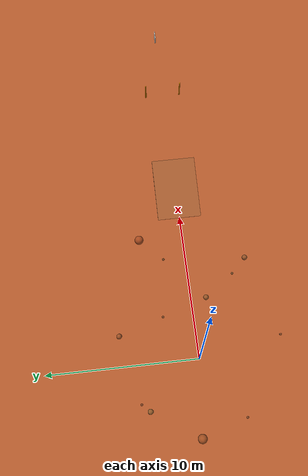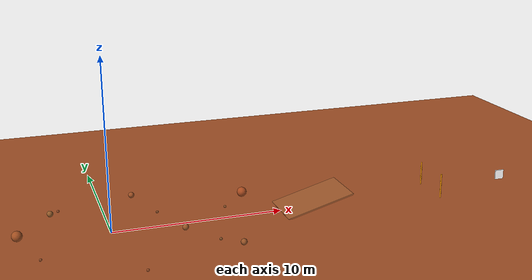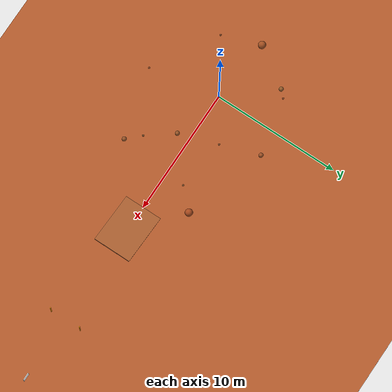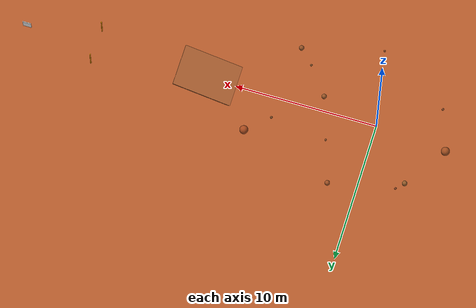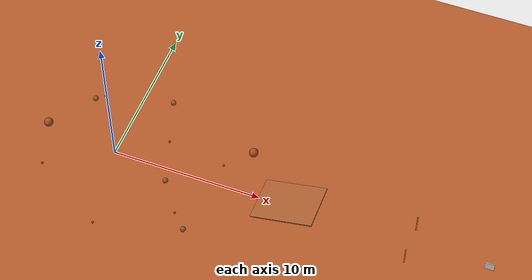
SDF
<?xml version="1.0"?>
<sdf version="1.8">
  <world name="depot">
    <gravity>0 0 -9.8066</gravity>
    <physics name="default_physics" type="ode">
      <max_step_size>0.004</max_step_size>
      <real_time_factor>1</real_time_factor>
    </physics>

    <!-- Required system plugins (same as empty.world) -->
    <plugin filename="gz-sim-physics-system"
            name="gz::sim::systems::Physics"/>
    <plugin filename="gz-sim-user-commands-system"
            name="gz::sim::systems::UserCommands"/>
    <plugin filename="gz-sim-scene-broadcaster-system"
            name="gz::sim::systems::SceneBroadcaster"/>
    <plugin filename="gz-sim-imu-system"
            name="gz::sim::systems::Imu"/>
    <plugin filename="gz-sim-navsat-system"
            name="gz::sim::systems::NavSat"/>
    <plugin filename="gz-sim-sensors-system"
            name="gz::sim::systems::Sensors">
      <render_engine>ogre2</render_engine>
    </plugin>
    <plugin filename="gz-sim-contact-system"
            name="gz::sim::systems::Contact"/>

    <!-- Reddish Mars-like sky and ambient -->
    <scene>
      <ambient>0.35 0.22 0.15 1</ambient>
      <background>0.55 0.38 0.22 1</background>
      <shadows>true</shadows>
    </scene>

    <!-- Sun — warm reddish tint to simulate Mars atmosphere -->
    <light type="directional" name="sun">
      <cast_shadows>true</cast_shadows>
      <pose>0 0 20 0 0 0</pose>
      <diffuse>0.85 0.70 0.55 1</diffuse>
      <specular>0.20 0.15 0.10 1</specular>
      <direction>-0.5 0.1 -0.9</direction>
    </light>

    <!-- ─── GPS origin: ARC Turkey placeholder ─────────────────────────── -->
    <!-- Update latitude_deg / longitude_deg to competition site before shipping -->
    <spherical_coordinates>
      <surface_model>EARTH_WGS84</surface_model>
      <latitude_deg>37.8700</latitude_deg>
      <longitude_deg>32.4800</longitude_deg>
      <elevation>1020.0</elevation>
      <heading_deg>0</heading_deg>
    </spherical_coordinates>

    <!-- ─── Ground plane — reddish Mars soil, loose friction ──────────── -->
    <model name="mars_ground">
      <static>true</static>
      <link name="link">
        <collision name="collision">
          <geometry>
            <box><size>100 100 0.1</size></box>
          </geometry>
          <surface>
            <friction>
              <ode>
                <mu>0.4</mu>
                <mu2>0.4</mu2>
              </ode>
            </friction>
          </surface>
        </collision>
        <visual name="visual">
          <geometry>
            <box><size>100 100 0.1</size></box>
          </geometry>
          <material>
            <ambient>0.58 0.28 0.12 1</ambient>
            <diffuse>0.68 0.34 0.16 1</diffuse>
            <specular>0.02 0.02 0.02 1</specular>
          </material>
        </visual>
      </link>
      <pose>0 0 -0.05 0 0 0</pose>
    </model>

    <!-- ─── Rocks — 6 small (r=0.08) ────────────────────────────────── -->
    <model name="rock_s1">
      <static>true</static>
      <pose>3.0 2.0 0.08 0 0 0</pose>
      <link name="link">
        <collision name="col"><geometry><sphere><radius>0.08</radius></sphere></geometry>
          <surface><friction><ode><mu>0.4</mu><mu2>0.4</mu2></ode></friction></surface>
        </collision>
        <visual name="vis"><geometry><sphere><radius>0.08</radius></sphere></geometry>
          <material><ambient>0.42 0.22 0.10 1</ambient><diffuse>0.52 0.28 0.13 1</diffuse></material>
        </visual>
      </link>
    </model>

    <model name="rock_s2">
      <static>true</static>
      <pose>-2.5 4.0 0.08 0 0 0.8</pose>
      <link name="link">
        <collision name="col"><geometry><sphere><radius>0.08</radius></sphere></geometry>
          <surface><friction><ode><mu>0.4</mu><mu2>0.4</mu2></ode></friction></surface>
        </collision>
        <visual name="vis"><geometry><sphere><radius>0.08</radius></sphere></geometry>
          <material><ambient>0.44 0.20 0.09 1</ambient><diffuse>0.54 0.26 0.12 1</diffuse></material>
        </visual>
      </link>
    </model>

    <model name="rock_s3">
      <static>true</static>
      <pose>5.5 -3.0 0.08 0 0 1.2</pose>
      <link name="link">
        <collision name="col"><geometry><sphere><radius>0.08</radius></sphere></geometry>
          <surface><friction><ode><mu>0.4</mu><mu2>0.4</mu2></ode></friction></surface>
        </collision>
        <visual name="vis"><geometry><sphere><radius>0.08</radius></sphere></geometry>
          <material><ambient>0.40 0.24 0.11 1</ambient><diffuse>0.50 0.30 0.14 1</diffuse></material>
        </visual>
      </link>
    </model>

    <model name="rock_s4">
      <static>true</static>
      <pose>-4.0 -2.5 0.08 0 0 0.3</pose>
      <link name="link">
        <collision name="col"><geometry><sphere><radius>0.08</radius></sphere></geometry>
          <surface><friction><ode><mu>0.4</mu><mu2>0.4</mu2></ode></friction></surface>
        </collision>
        <visual name="vis"><geometry><sphere><radius>0.08</radius></sphere></geometry>
          <material><ambient>0.43 0.21 0.10 1</ambient><diffuse>0.53 0.27 0.13 1</diffuse></material>
        </visual>
      </link>
    </model>

    <model name="rock_s5">
      <static>true</static>
      <pose>7.0 1.5 0.08 0 0 2.1</pose>
      <link name="link">
        <collision name="col"><geometry><sphere><radius>0.08</radius></sphere></geometry>
          <surface><friction><ode><mu>0.4</mu><mu2>0.4</mu2></ode></friction></surface>
        </collision>
        <visual name="vis"><geometry><sphere><radius>0.08</radius></sphere></geometry>
          <material><ambient>0.41 0.23 0.10 1</ambient><diffuse>0.51 0.29 0.13 1</diffuse></material>
        </visual>
      </link>
    </model>

    <model name="rock_s6">
      <static>true</static>
      <pose>1.0 -5.5 0.08 0 0 0.6</pose>
      <link name="link">
        <collision name="col"><geometry><sphere><radius>0.08</radius></sphere></geometry>
          <surface><friction><ode><mu>0.4</mu><mu2>0.4</mu2></ode></friction></surface>
        </collision>
        <visual name="vis"><geometry><sphere><radius>0.08</radius></sphere></geometry>
          <material><ambient>0.45 0.21 0.09 1</ambient><diffuse>0.55 0.27 0.12 1</diffuse></material>
        </visual>
      </link>
    </model>

    <!-- ─── Rocks — 4 medium (r=0.18) ───────────────────────────────── -->
    <model name="rock_m1">
      <static>true</static>
      <pose>4.0 -1.0 0.18 0 0 1.0</pose>
      <link name="link">
        <collision name="col"><geometry><sphere><radius>0.18</radius></sphere></geometry>
          <surface><friction><ode><mu>0.4</mu><mu2>0.4</mu2></ode></friction></surface>
        </collision>
        <visual name="vis"><geometry><sphere><radius>0.18</radius></sphere></geometry>
          <material><ambient>0.48 0.26 0.11 1</ambient><diffuse>0.58 0.32 0.14 1</diffuse></material>
        </visual>
      </link>
    </model>

    <model name="rock_m2">
      <static>true</static>
      <pose>-3.0 3.5 0.18 0 0 0.4</pose>
      <link name="link">
        <collision name="col"><geometry><sphere><radius>0.18</radius></sphere></geometry>
          <surface><friction><ode><mu>0.4</mu><mu2>0.4</mu2></ode></friction></surface>
        </collision>
        <visual name="vis"><geometry><sphere><radius>0.18</radius></sphere></geometry>
          <material><ambient>0.46 0.28 0.12 1</ambient><diffuse>0.56 0.34 0.15 1</diffuse></material>
        </visual>
      </link>
    </model>

    <model name="rock_m3">
      <static>true</static>
      <pose>2.0 5.0 0.18 0 0 1.7</pose>
      <link name="link">
        <collision name="col"><geometry><sphere><radius>0.18</radius></sphere></geometry>
          <surface><friction><ode><mu>0.4</mu><mu2>0.4</mu2></ode></friction></surface>
        </collision>
        <visual name="vis"><geometry><sphere><radius>0.18</radius></sphere></geometry>
          <material><ambient>0.50 0.24 0.10 1</ambient><diffuse>0.60 0.30 0.13 1</diffuse></material>
        </visual>
      </link>
    </model>

    <model name="rock_m4">
      <static>true</static>
      <pose>6.5 -4.0 0.18 0 0 0.9</pose>
      <link name="link">
        <collision name="col"><geometry><sphere><radius>0.18</radius></sphere></geometry>
          <surface><friction><ode><mu>0.4</mu><mu2>0.4</mu2></ode></friction></surface>
        </collision>
        <visual name="vis"><geometry><sphere><radius>0.18</radius></sphere></geometry>
          <material><ambient>0.47 0.25 0.11 1</ambient><diffuse>0.57 0.31 0.14 1</diffuse></material>
        </visual>
      </link>
    </model>

    <!-- ─── Rocks — 2 large (r=0.30) ────────────────────────────────── -->
    <model name="rock_l1">
      <static>true</static>
      <pose>-5.0 0.5 0.30 0 0 0.7</pose>
      <link name="link">
        <collision name="col"><geometry><sphere><radius>0.30</radius></sphere></geometry>
          <surface><friction><ode><mu>0.4</mu><mu2>0.4</mu2></ode></friction></surface>
        </collision>
        <visual name="vis"><geometry><sphere><radius>0.30</radius></sphere></geometry>
          <material><ambient>0.50 0.24 0.09 1</ambient><diffuse>0.62 0.30 0.12 1</diffuse></material>
        </visual>
      </link>
    </model>

    <model name="rock_l2">
      <static>true</static>
      <pose>8.5 3.0 0.30 0 0 1.4</pose>
      <link name="link">
        <collision name="col"><geometry><sphere><radius>0.30</radius></sphere></geometry>
          <surface><friction><ode><mu>0.4</mu><mu2>0.4</mu2></ode></friction></surface>
        </collision>
        <visual name="vis"><geometry><sphere><radius>0.30</radius></sphere></geometry>
          <material><ambient>0.52 0.22 0.08 1</ambient><diffuse>0.64 0.28 0.11 1</diffuse></material>
        </visual>
      </link>
    </model>

    <!-- ─── Slope berm — 15° incline, 4 m long, triggers slope_detector ── -->
    <!--
      A 4 m long, 3 m wide slab tilted at 15° (0.2618 rad) around Y-axis.
      Rover drives up from X=10; far edge rises ~1.04 m above ground.
      Center at X=12, Z=0.52 (mid-height of ramp).
    -->
    <model name="slope_berm">
      <static>true</static>
      <pose>12.0 0.0 0.52 0 -0.2618 0</pose>
      <link name="link">
        <collision name="collision">
          <geometry>
            <box><size>4.2 3.0 0.08</size></box>
          </geometry>
          <surface>
            <friction>
              <ode>
                <mu>0.5</mu>
                <mu2>0.5</mu2>
              </ode>
            </friction>
          </surface>
        </collision>
        <visual name="visual">
          <geometry>
            <box><size>4.2 3.0 0.08</size></box>
          </geometry>
          <material>
            <ambient>0.55 0.30 0.14 1</ambient>
            <diffuse>0.65 0.36 0.18 1</diffuse>
          </material>
        </visual>
      </link>
    </model>

    <!-- ─── Navigation gate — 2.5 m opening, 1.5 m tall poles ──────── -->
    <model name="gate_pole_left">
      <static>true</static>
      <pose>20.0 -1.25 0.75 0 0 0</pose>
      <link name="link">
        <collision name="collision">
          <geometry>
            <cylinder><radius>0.04</radius><length>1.5</length></cylinder>
          </geometry>
        </collision>
        <visual name="visual">
          <geometry>
            <cylinder><radius>0.04</radius><length>1.5</length></cylinder>
          </geometry>
          <material>
            <ambient>1.0 0.5 0.0 1</ambient>
            <diffuse>1.0 0.6 0.0 1</diffuse>
          </material>
        </visual>
      </link>
    </model>

    <model name="gate_pole_right">
      <static>true</static>
      <pose>20.0 1.25 0.75 0 0 0</pose>
      <link name="link">
        <collision name="collision">
          <geometry>
            <cylinder><radius>0.04</radius><length>1.5</length></cylinder>
          </geometry>
        </collision>
        <visual name="visual">
          <geometry>
            <cylinder><radius>0.04</radius><length>1.5</length></cylinder>
          </geometry>
          <material>
            <ambient>1.0 0.5 0.0 1</ambient>
            <diffuse>1.0 0.6 0.0 1</diffuse>
          </material>
        </visual>
      </link>
    </model>

    <!-- ─── ArUco target panel — white panel at X=25, facing -X ──────── -->
    <model name="aruco_target">
      <static>true</static>
      <pose>25.0 0.0 0.5 0 0 1.5708</pose>
      <link name="link">
        <collision name="collision">
          <geometry>
            <box><size>0.05 0.6 0.6</size></box>
          </geometry>
        </collision>
        <visual name="visual">
          <geometry>
            <box><size>0.05 0.6 0.6</size></box>
          </geometry>
          <material>
            <ambient>0.95 0.95 0.95 1</ambient>
            <diffuse>1.0 1.0 1.0 1</diffuse>
          </material>
        </visual>
      </link>
    </model>

  </world>
</sdf>
